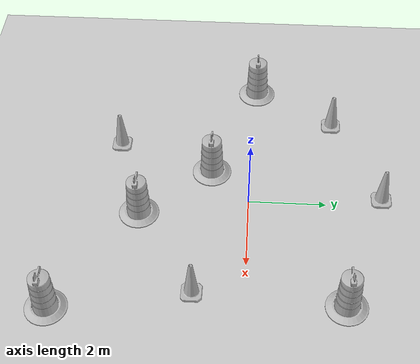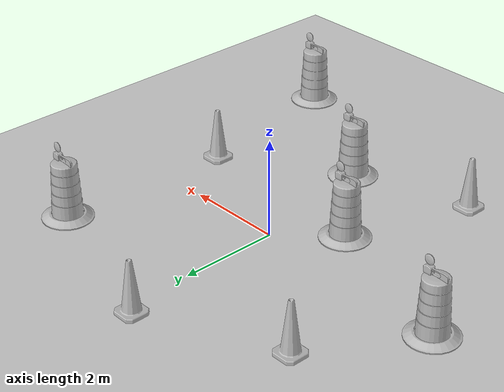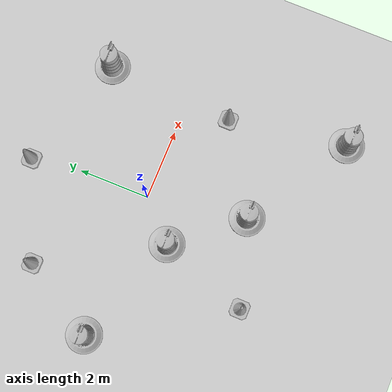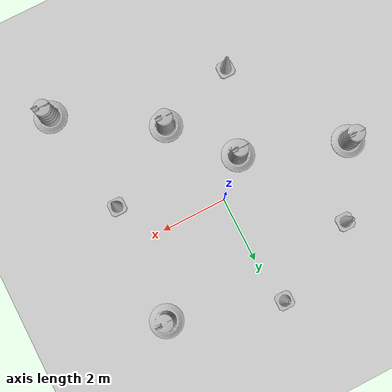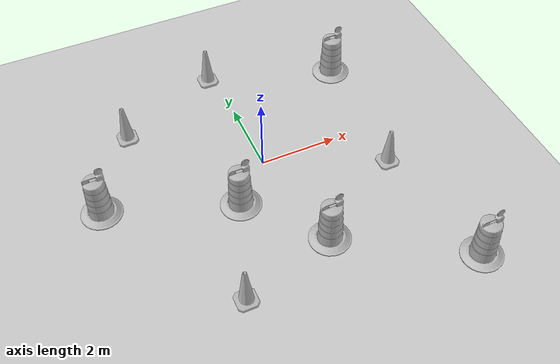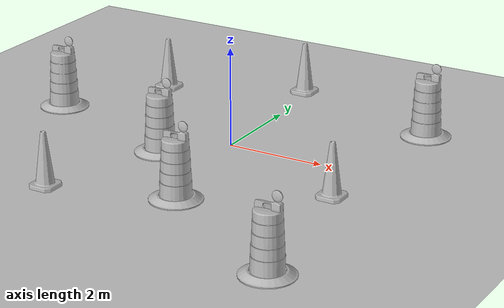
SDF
<sdf version="1.7">
 <world name="default">
  <light name="sun" type="directional">
   <pose>0 0 10 0 -0 0</pose>
   <diffuse>0.8 0.8 0.8 1</diffuse>
   <specular>0.2 0.2 0.2 1</specular>
   <attenuation>
    <range>1000</range>
    <constant>0.9</constant>
    <linear>0.01</linear>
    <quadratic>0.001</quadratic>
   </attenuation>
   <direction>-0.5 0.1 -0.9</direction>
   <spot><inner_angle>0</inner_angle><outer_angle>0</outer_angle><falloff>0</falloff></spot>
  </light>
  <model name="ground_plane">
   <static>1</static>
   <link name="link">
    <collision name="collision">
     <geometry><plane><normal>0 0 1</normal><size>100 100</size></plane></geometry>
     <surface>
      <contact><collide_bitmask>65535</collide_bitmask></contact>
      <friction><ode><mu>100</mu><mu2>50</mu2></ode></friction>
     </surface>
    </collision>
    <visual name="visual">
     <cast_shadows>0</cast_shadows>
     <geometry><plane><normal>0 0 1</normal><size>100 100</size></plane></geometry>
     <material>
      <script><uri>file://media/materials/scripts/gazebo.material</uri><name>Gazebo/Grey</name></script>
     </material>
    </visual>
   </link>
  </model>
  <gravity>0 0 -9.8</gravity>
  <magnetic_field>6e-06 2.3e-05 -4.2e-05</magnetic_field>
  <atmosphere type="adiabatic"/>
  <physics type="ode">
   <max_step_size>0.001</max_step_size>
   <real_time_factor>1</real_time_factor>
   <real_time_update_rate>1000</real_time_update_rate>
  </physics>
  <scene><ambient>0.4 0.4 0.4 1</ambient><background>0.7 0.7 0.7 1</background><shadows>1</shadows></scene>
  <audio><device>default</device></audio>
  <spherical_coordinates>
   <surface_model>EARTH_WGS84</surface_model>
   <latitude_deg>0</latitude_deg>
   <longitude_deg>0</longitude_deg>
   <elevation>0</elevation>
   <heading_deg>0</heading_deg>
  </spherical_coordinates>
  <model name="Construction Cone">
   <link name="link">
    <collision name="collision">
     <geometry>
      <mesh><scale>10 10 10</scale><uri>model://construction_cone/meshes/construction_cone.dae</uri></mesh>
     </geometry>
    </collision>
    <visual name="visual">
     <geometry>
      <mesh><scale>10 10 10</scale><uri>model://construction_cone/meshes/construction_cone.dae</uri></mesh>
     </geometry>
    </visual>
    <inertial>
     <inertia><ixx>1</ixx><ixy>0</ixy><ixz>0</ixz><iyy>1</iyy><iyz>0</iyz><izz>1</izz></inertia>
     <mass>1</mass>
    </inertial>
   </link>
   <pose>-2.88436 2.21019 -0 -0 -0 -0</pose>
  </model>
  <model name="Construction Barrel">
   <link name="link">
    <inertial>
     <pose>0 0 0.4 0 -0 0</pose>
     <mass>500</mass>
     <inertia><ixx>51.2096</ixx><iyy>51.2096</iyy><izz>25</izz><ixy>0</ixy><ixz>0</ixz><iyz>0</iyz></inertia>
    </inertial>
    <collision name="collision">
     <geometry><mesh><uri>model://construction_barrel/meshes/construction_barrel.dae</uri></mesh></geometry>
    </collision>
    <visual name="visual">
     <geometry><mesh><uri>model://construction_barrel/meshes/construction_barrel.dae</uri></mesh></geometry>
    </visual>
   </link>
   <pose>-1.00007 -1.00002 -1e-06 2e-06 -1e-06 -1.5e-05</pose>
  </model>
  <model name="Construction Barrel_clone">
   <link name="link">
    <inertial>
     <pose>0 0 0.4 0 -0 0</pose>
     <mass>500</mass>
     <inertia><ixx>51.2096</ixx><iyy>51.2096</iyy><izz>25</izz><ixy>0</ixy><ixz>0</ixz><iyz>0</iyz></inertia>
    </inertial>
    <collision name="collision">
     <geometry><mesh><uri>model://construction_barrel/meshes/construction_barrel.dae</uri></mesh></geometry>
    </collision>
    <visual name="visual">
     <geometry><mesh><uri>model://construction_barrel/meshes/construction_barrel.dae</uri></mesh></geometry>
    </visual>
   </link>
   <pose>0.507839 -2.77449 -2e-06 1e-06 8e-06 -1.8e-05</pose>
  </model>
  <model name="Construction Barrel_clone_0">
   <link name="link">
    <inertial>
     <pose>0 0 0.4 0 -0 0</pose>
     <mass>500</mass>
     <inertia><ixx>51.2096</ixx><iyy>51.2096</iyy><izz>25</izz><ixy>0</ixy><ixz>0</ixz><iyz>0</iyz></inertia>
    </inertial>
    <collision name="collision">
     <geometry><mesh><uri>model://construction_barrel/meshes/construction_barrel.dae</uri></mesh></geometry>
    </collision>
    <visual name="visual">
     <geometry><mesh><uri>model://construction_barrel/meshes/construction_barrel.dae</uri></mesh></geometry>
    </visual>
   </link>
   <pose>3.09615 2.37995 -1e-06 1e-06 -9e-06 -1.3e-05</pose>
  </model>
  <model name="Construction Cone_clone">
   <link name="link">
    <collision name="collision">
     <geometry>
      <mesh><scale>10 10 10</scale><uri>model://construction_cone/meshes/construction_cone.dae</uri></mesh>
     </geometry>
    </collision>
    <visual name="visual">
     <geometry>
      <mesh><scale>10 10 10</scale><uri>model://construction_cone/meshes/construction_cone.dae</uri></mesh>
     </geometry>
    </visual>
    <inertial>
     <inertia><ixx>1</ixx><ixy>0</ixy><ixz>0</ixz><iyy>1</iyy><iyz>0</iyz><izz>1</izz></inertia>
     <mass>1</mass>
    </inertial>
   </link>
   <pose>-0.217186 3.42083 -0 0 -0 0</pose>
  </model>
  <model name="Construction Cone_clone_0">
   <link name="link">
    <collision name="collision">
     <geometry>
      <mesh><scale>10 10 10</scale><uri>model://construction_cone/meshes/construction_cone.dae</uri></mesh>
     </geometry>
    </collision>
    <visual name="visual">
     <geometry>
      <mesh><scale>10 10 10</scale><uri>model://construction_cone/meshes/construction_cone.dae</uri></mesh>
     </geometry>
    </visual>
    <inertial>
     <inertia><ixx>1</ixx><ixy>0</ixy><ixz>0</ixz><iyy>1</iyy><iyz>0</iyz><izz>1</izz></inertia>
     <mass>1</mass>
    </inertial>
   </link>
   <pose>2.89387 -1.25507 0 -0 -0 -0</pose>
  </model>
  <model name="Construction Cone_clone_1">
   <link name="link">
    <collision name="collision">
     <geometry>
      <mesh><scale>10 10 10</scale><uri>model://construction_cone/meshes/construction_cone.dae</uri></mesh>
     </geometry>
    </collision>
    <visual name="visual">
     <geometry>
      <mesh><scale>10 10 10</scale><uri>model://construction_cone/meshes/construction_cone.dae</uri></mesh>
     </geometry>
    </visual>
    <inertial>
     <inertia><ixx>1</ixx><ixy>0</ixy><ixz>0</ixz><iyy>1</iyy><iyz>0</iyz><izz>1</izz></inertia>
     <mass>1</mass>
    </inertial>
   </link>
   <pose>-1.88521 -3.50914 -0 0 -0 0</pose>
  </model>
  <model name="Construction Barrel_clone_clone">
   <link name="link">
    <inertial>
     <pose>0 0 0.4 0 -0 0</pose>
     <mass>500</mass>
     <inertia><ixx>51.2096</ixx><iyy>51.2096</iyy><izz>25</izz><ixy>0</ixy><ixz>0</ixz><iyz>0</iyz></inertia>
    </inertial>
    <collision name="collision">
     <geometry><mesh><uri>model://construction_barrel/meshes/construction_barrel.dae</uri></mesh></geometry>
    </collision>
    <visual name="visual">
     <geometry><mesh><uri>model://construction_barrel/meshes/construction_barrel.dae</uri></mesh></geometry>
    </visual>
   </link>
   <pose>3.47134 -4.60343 -2e-06 -8e-06 -4e-06 -1.8e-05</pose>
  </model>
  <model name="Construction Barrel_clone_clone_0">
   <link name="link">
    <inertial>
     <pose>0 0 0.4 0 -0 0</pose>
     <mass>500</mass>
     <inertia><ixx>51.2096</ixx><iyy>51.2096</iyy><izz>25</izz><ixy>0</ixy><ixz>0</ixz><iyz>0</iyz></inertia>
    </inertial>
    <collision name="collision">
     <geometry><mesh><uri>model://construction_barrel/meshes/construction_barrel.dae</uri></mesh></geometry>
    </collision>
    <visual name="visual">
     <geometry><mesh><uri>model://construction_barrel/meshes/construction_barrel.dae</uri></mesh></geometry>
    </visual>
   </link>
   <pose>-4.12758 0.122777 1e-06 4e-06 3e-06 -1.5e-05</pose>
  </model>
 </world>
</sdf>
